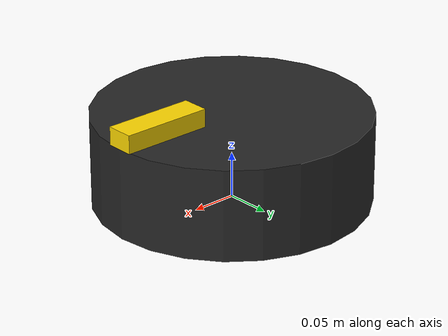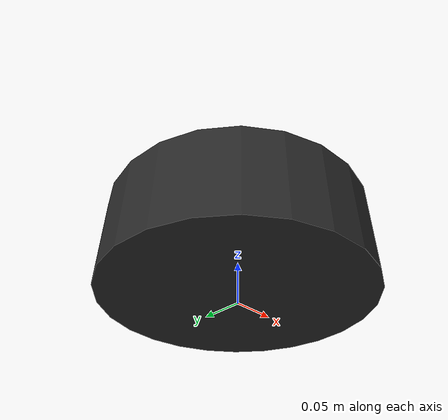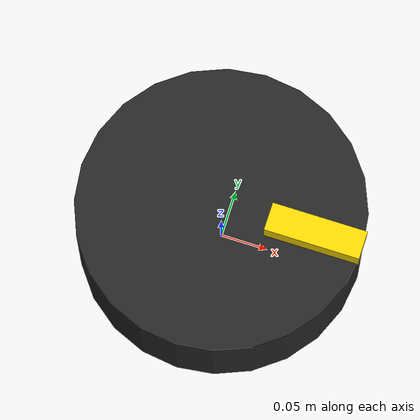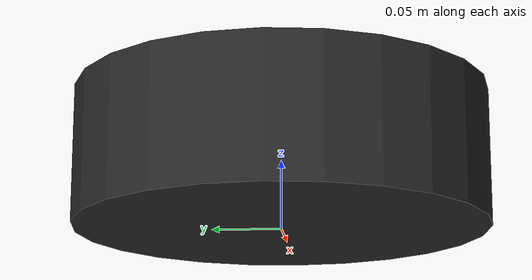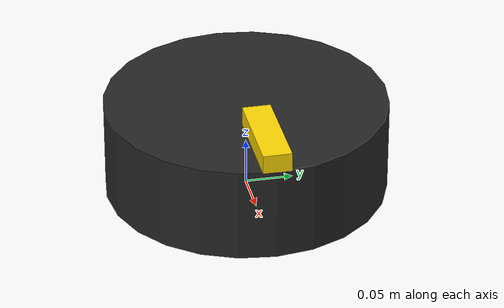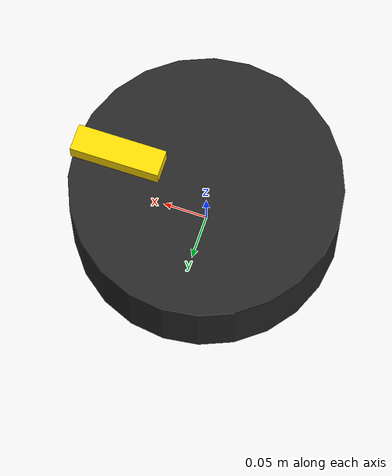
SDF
<?xml version="1.0"?>
<!--
  Holonomic ground robot for GAIL+SAC navigation training.

-->
<sdf version="1.9">
  <model name="holonomic_robot">
    <pose>0 0 0.05 0 0 0</pose>

    <link name="base_link">
      <pose>0 0 0 0 0 0</pose>

      <inertial>
        <mass>3.0</mass>
        <inertia>
          <ixx>0.02</ixx>
          <iyy>0.02</iyy>
          <izz>0.03</izz>
          <ixy>0</ixy>
          <ixz>0</ixz>
          <iyz>0</iyz>
        </inertia>
      </inertial>

      <visual name="chassis_visual">
        <geometry>
          <cylinder>
            <radius>0.15</radius>
            <length>0.10</length>
          </cylinder>
        </geometry>
        <material>
          <ambient>0.10 0.10 0.10 1</ambient>
          <diffuse>0.15 0.15 0.15 1</diffuse>
          <specular>0.2 0.2 0.2 1</specular>
        </material>
      </visual>

      <visual name="heading_arrow">
        <pose>0.10 0 0.06 0 0 0</pose>
        <geometry>
          <box>
            <size>0.10 0.03 0.02</size>
          </box>
        </geometry>
        <material>
          <ambient>0.9 0.8 0.0 1</ambient>
          <diffuse>1.0 0.85 0.0 1</diffuse>
        </material>
      </visual>

      <collision name="chassis_collision">
        <geometry>
          <cylinder>
            <radius>0.15</radius>
            <length>0.10</length>
          </cylinder>
        </geometry>
        <surface>
          <friction>
            <ode>
              <mu>0.5</mu>
              <mu2>0.5</mu2>
            </ode>
          </friction>
          <contact>
            <ode>
              <kp>1e7</kp>
              <kd>1.0</kd>
            </ode>
          </contact>
        </surface>
      </collision>

      <sensor name="lidar" type="gpu_lidar">
        <pose>0 0 0.10 0 0 0</pose>
        <topic>scan</topic>
        <update_rate>10</update_rate>
        <always_on>true</always_on>
        <visualize>true</visualize>

        <lidar>
          <scan>
            <horizontal>
              <samples>360</samples>
              <resolution>1</resolution>
              <min_angle>-3.14159</min_angle>
              <max_angle>3.14159</max_angle>
            </horizontal>
            <!-- Single vertical layer; this is a 2D scan. -->
            <vertical>
              <samples>1</samples>
              <resolution>1</resolution>
              <min_angle>0</min_angle>
              <max_angle>0</max_angle>
            </vertical>
          </scan>
          <range>
            <min>0.10</min>
            <max>3.0</max>
            <resolution>0.01</resolution>
          </range>
          <noise>
            <type>gaussian</type>
            <mean>0.0</mean>
            <stddev>0.01</stddev>
          </noise>
        </lidar>
      </sensor>
    </link>

    <plugin
      filename="gz-sim-velocity-control-system"
      name="gz::sim::systems::VelocityControl">
      <topic>cmd_vel</topic>
      <link_name>base_link</link_name>
    </plugin>

    <plugin
      filename="gz-sim-odometry-publisher-system"
      name="gz::sim::systems::OdometryPublisher">
      <odom_publish_frequency>50</odom_publish_frequency>
      <odom_topic>odometry</odom_topic>
      <odom_frame>world</odom_frame>
      <robot_base_frame>base_link</robot_base_frame>
      <dimensions>3</dimensions>
    </plugin>

    <gravity>false</gravity>

    <self_collide>false</self_collide>
  </model>
</sdf>
